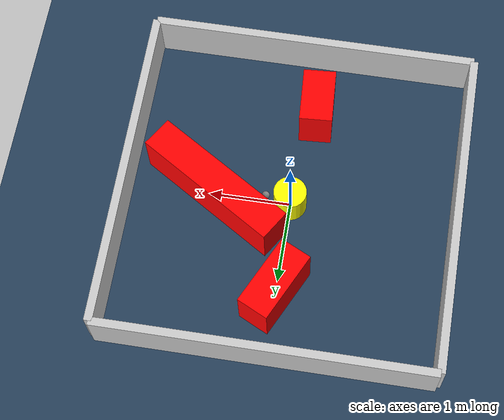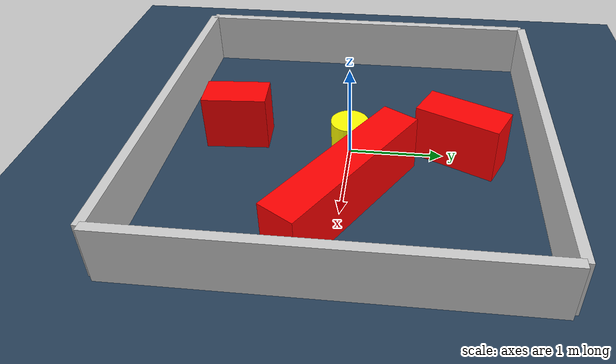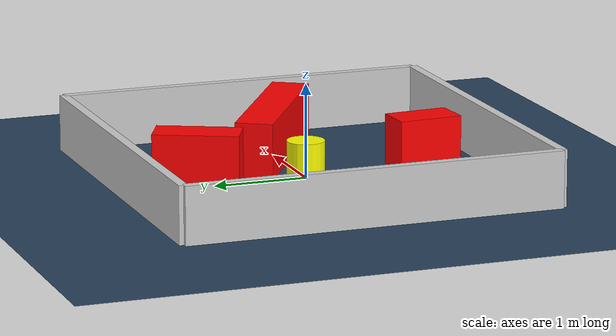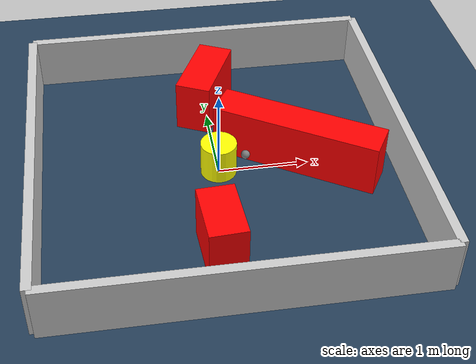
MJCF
<?xml version="1.0" ?>
<mujoco model="generated_environment">
  <option timestep="0.01" integrator="RK4" cone="elliptic"/>
  <default>
    <geom density="1"/>
  </default>
  <asset>
    <texture builtin="gradient" height="3072" rgb1="0.3 0.5 0.7" rgb2="0 0 0" type="skybox" width="512"/>
    <texture builtin="checker" height="300" mark="edge" markrgb="0.8 0.8 0.8" name="groundplane" rgb1="0.2 0.3 0.4" rgb2="0.1 0.2 0.3" type="2d" width="300"/>
    <material name="groundplane" reflectance="0.2" texrepeat="5 5" texture="groundplane" texuniform="true"/>
    <material name="robot" rgba="0.0 1.0 0.0 1"/>
  </asset>
  <worldbody>
    <light dir="0 0 -1" directional="true" pos="0 0 1.5"/>
    <geom condim="4" friction="1.0 0.005 0.001" material="groundplane" name="floor" size="0 0 0.05" type="plane"/>
    <body name="walls">
      <geom name="wall_1" condim="4" pos="-2.0 0.0 0.3" rgba="0.800000011920929 0.800000011920929 0.800000011920929 1.0" size="0.05 2.0 0.3" type="box"/>
      <geom name="wall_2" condim="4" pos="2.0 0.0 0.3" rgba="0.800000011920929 0.800000011920929 0.800000011920929 1.0" size="0.05 2.0 0.3" type="box"/>
      <geom name="wall_3" condim="4" pos="0.0 -2.0 0.3" rgba="0.800000011920929 0.800000011920929 0.800000011920929 1.0" size="2.0 0.05 0.3" type="box"/>
      <geom name="wall_4" condim="4" pos="0.0 2.0 0.3" rgba="0.800000011920929 0.800000011920929 0.800000011920929 1.0" size="2.0 0.05 0.3" type="box"/>
    </body>
    <body name="robot">
      <joint name="joint_x" type="slide" pos="0 0 0" axis="1 0 0"/>
      <joint name="joint_y" type="slide" pos="0 0 0" axis="0 1 0"/>
      <geom name="robot" type="sphere" pos="0.3 0.0 0.2" size="0.05" mass="5." friction="1.0 0.005 0.0001" condim="4" rgba="0.5 0.5 0.5 1.0"/>
      <site name="sensor_ball"/>
    </body>
    <body name="obstacle_movable_1">
      <geom name="obstacle_movable_1" condim="4" pos="0.0 0.0 0.2" euler="0 0 0.0" friction="1.0 0.005 0.001" rgba="1.0 1.0 0.0 1.0" size="0.2 0.2 0.0" type="cylinder" mass="0.1"/>
      <joint type="free"/>
    </body>
    <body name="obstacle_2_static">
      <geom name="obstacle_2_static" condim="4" pos="0.8974653892524636 0.040208367981143134 0.3" euler="0 0 148.31491011686896" friction="1.0 0.005 0.001" rgba="1 0 0 1" size="0.9433641558887229 0.2 0.3" type="box"/>
    </body>
    <body name="obstacle_3_static">
      <geom name="obstacle_3_static" condim="4" pos="0.002231007890818315 1.1787024412273366 0.3" euler="0 0 64.50073728999399" friction="1.0 0.005 0.001" rgba="1 0 0 1" size="0.44863734105326847 0.2 0.3" type="box"/>
    </body>
    <body name="obstacle_4_static">
      <geom name="obstacle_4_static" condim="4" pos="-0.15009678408323213 -1.2465715059650078 0.3" euler="0 0 273.522576044313" friction="1.0 0.005 0.001" rgba="1 0 0 1" size="0.34049444926666184 0.2 0.3" type="box"/>
    </body>
  </worldbody>
  <actuator>
    <motor name="actuator_x" joint="joint_x" gear="1" ctrlrange="-1 1"/>
    <motor name="actuator_y" joint="joint_y" gear="1" ctrlrange="-1 1"/>
  </actuator>
</mujoco>
